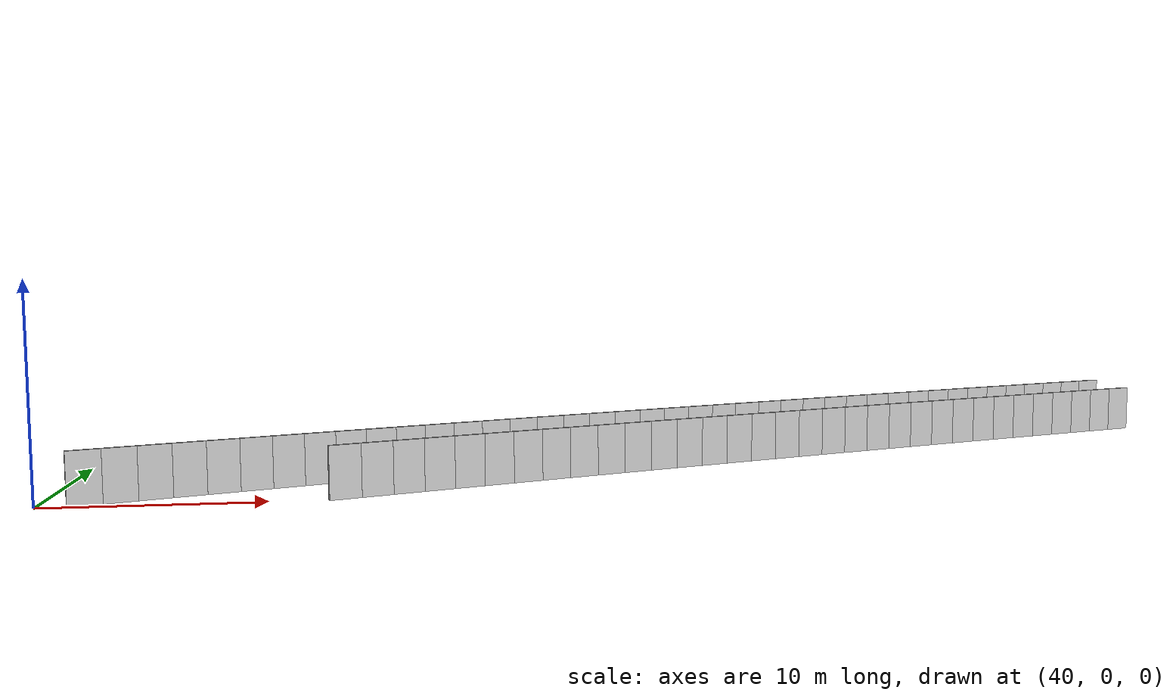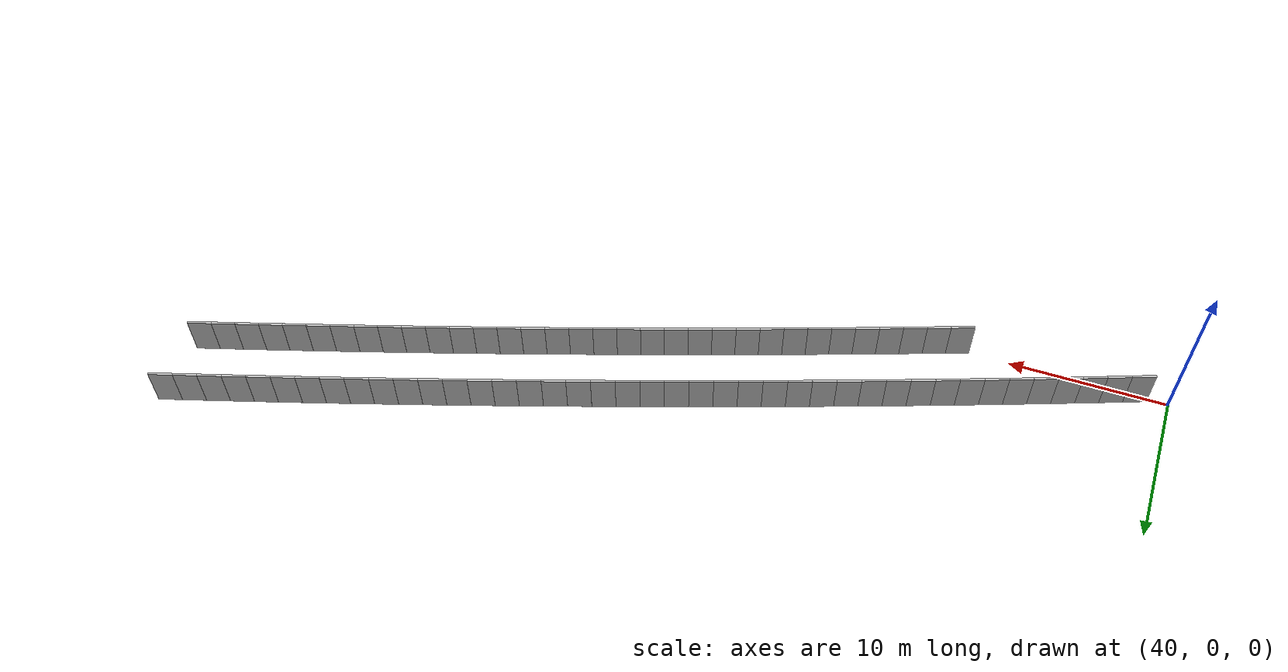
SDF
<?xml version="1.0" ?>
<sdf version="1.6">
  <model name="sps_0823">
    <pose frame="">0 0 0 0 -0 0</pose>
    <static>1</static>
    <self_collide>0</self_collide>
    <allow_auto_disable>0</allow_auto_disable>
    <link name="Wall3096">
      <kinematic>0</kinematic>
      <gravity>1</gravity>
      <self_collide>0</self_collide>
      <collision name="collision">
        <geometry>
          <box>
            <size>1.49633 0.15 2.5</size>
          </box>
        </geometry>
        <pose frame="">0 0 0 0 -0 0</pose>
      </collision>
      <visual name="visual">
        <geometry>
          <box>
            <size>1.49633 0.15 2.5</size>
          </box>
        </geometry>
        <pose frame="">0 0 0 0 -0 0</pose>
        <cast_shadows>1</cast_shadows>
        <transparency>0.0</transparency>
      </visual>
      <pose frame="">98.6327 15.6846 1.25 0 0 -2.83655</pose>
    </link>
    <link name="Wall3097">
      <kinematic>0</kinematic>
      <gravity>1</gravity>
      <self_collide>0</self_collide>
      <collision name="collision">
        <geometry>
          <box>
            <size>1.4966 0.15 2.5</size>
          </box>
        </geometry>
        <pose frame="">0 0 0 0 -0 0</pose>
      </collision>
      <visual name="visual">
        <geometry>
          <box>
            <size>1.4966 0.15 2.5</size>
          </box>
        </geometry>
        <pose frame="">0 0 0 0 -0 0</pose>
        <cast_shadows>1</cast_shadows>
        <transparency>0.0</transparency>
      </visual>
      <pose frame="">97.2056 15.234 1.25 0 0 -2.83489</pose>
    </link>
    <link name="Wall3098">
      <kinematic>0</kinematic>
      <gravity>1</gravity>
      <self_collide>0</self_collide>
      <collision name="collision">
        <geometry>
          <box>
            <size>1.4966 0.15 2.5</size>
          </box>
        </geometry>
        <pose frame="">0 0 0 0 -0 0</pose>
      </collision>
      <visual name="visual">
        <geometry>
          <box>
            <size>1.4966 0.15 2.5</size>
          </box>
        </geometry>
        <pose frame="">0 0 0 0 -0 0</pose>
        <cast_shadows>1</cast_shadows>
        <transparency>0.0</transparency>
      </visual>
      <pose frame="">95.7793 14.781 1.25 0 0 -2.83327</pose>
    </link>
    <link name="Wall3099">
      <kinematic>0</kinematic>
      <gravity>1</gravity>
      <self_collide>0</self_collide>
      <collision name="collision">
        <geometry>
          <box>
            <size>1.49642 0.15 2.5</size>
          </box>
        </geometry>
        <pose frame="">0 0 0 0 -0 0</pose>
      </collision>
      <visual name="visual">
        <geometry>
          <box>
            <size>1.49642 0.15 2.5</size>
          </box>
        </geometry>
        <pose frame="">0 0 0 0 -0 0</pose>
        <cast_shadows>1</cast_shadows>
        <transparency>0.0</transparency>
      </visual>
      <pose frame="">94.3537 14.3258 1.25 0 0 -2.83177</pose>
    </link>
    <link name="Wall3100">
      <kinematic>0</kinematic>
      <gravity>1</gravity>
      <self_collide>0</self_collide>
      <collision name="collision">
        <geometry>
          <box>
            <size>1.4966 0.15 2.5</size>
          </box>
        </geometry>
        <pose frame="">0 0 0 0 -0 0</pose>
      </collision>
      <visual name="visual">
        <geometry>
          <box>
            <size>1.4966 0.15 2.5</size>
          </box>
        </geometry>
        <pose frame="">0 0 0 0 -0 0</pose>
        <cast_shadows>1</cast_shadows>
        <transparency>0.0</transparency>
      </visual>
      <pose frame="">92.9288 13.8684 1.25 0 0 -2.83019</pose>
    </link>
    <link name="Wall3101">
      <kinematic>0</kinematic>
      <gravity>1</gravity>
      <self_collide>0</self_collide>
      <collision name="collision">
        <geometry>
          <box>
            <size>1.49654 0.15 2.5</size>
          </box>
        </geometry>
        <pose frame="">0 0 0 0 -0 0</pose>
      </collision>
      <visual name="visual">
        <geometry>
          <box>
            <size>1.49654 0.15 2.5</size>
          </box>
        </geometry>
        <pose frame="">0 0 0 0 -0 0</pose>
        <cast_shadows>1</cast_shadows>
        <transparency>0.0</transparency>
      </visual>
      <pose frame="">91.5046 13.4086 1.25 0 0 -2.82846</pose>
    </link>
    <link name="Wall3102">
      <kinematic>0</kinematic>
      <gravity>1</gravity>
      <self_collide>0</self_collide>
      <collision name="collision">
        <geometry>
          <box>
            <size>1.49647 0.15 2.5</size>
          </box>
        </geometry>
        <pose frame="">0 0 0 0 -0 0</pose>
      </collision>
      <visual name="visual">
        <geometry>
          <box>
            <size>1.49647 0.15 2.5</size>
          </box>
        </geometry>
        <pose frame="">0 0 0 0 -0 0</pose>
        <cast_shadows>1</cast_shadows>
        <transparency>0.0</transparency>
      </visual>
      <pose frame="">90.0812 12.9466 1.25 0 0 -2.82703</pose>
    </link>
    <link name="Wall3103">
      <kinematic>0</kinematic>
      <gravity>1</gravity>
      <self_collide>0</self_collide>
      <collision name="collision">
        <geometry>
          <box>
            <size>1.49639 0.15 2.5</size>
          </box>
        </geometry>
        <pose frame="">0 0 0 0 -0 0</pose>
      </collision>
      <visual name="visual">
        <geometry>
          <box>
            <size>1.49639 0.15 2.5</size>
          </box>
        </geometry>
        <pose frame="">0 0 0 0 -0 0</pose>
        <cast_shadows>1</cast_shadows>
        <transparency>0.0</transparency>
      </visual>
      <pose frame="">88.6586 12.4824 1.25 0 0 -2.82534</pose>
    </link>
    <link name="Wall3104">
      <kinematic>0</kinematic>
      <gravity>1</gravity>
      <self_collide>0</self_collide>
      <collision name="collision">
        <geometry>
          <box>
            <size>1.49663 0.15 2.5</size>
          </box>
        </geometry>
        <pose frame="">0 0 0 0 -0 0</pose>
      </collision>
      <visual name="visual">
        <geometry>
          <box>
            <size>1.49663 0.15 2.5</size>
          </box>
        </geometry>
        <pose frame="">0 0 0 0 -0 0</pose>
        <cast_shadows>1</cast_shadows>
        <transparency>0.0</transparency>
      </visual>
      <pose frame="">87.2367 12.0158 1.25 0 0 -2.82367</pose>
    </link>
    <link name="Wall3105">
      <kinematic>0</kinematic>
      <gravity>1</gravity>
      <self_collide>0</self_collide>
      <collision name="collision">
        <geometry>
          <box>
            <size>1.49643 0.15 2.5</size>
          </box>
        </geometry>
        <pose frame="">0 0 0 0 -0 0</pose>
      </collision>
      <visual name="visual">
        <geometry>
          <box>
            <size>1.49643 0.15 2.5</size>
          </box>
        </geometry>
        <pose frame="">0 0 0 0 -0 0</pose>
        <cast_shadows>1</cast_shadows>
        <transparency>0.0</transparency>
      </visual>
      <pose frame="">85.8155 11.547 1.25 0 0 -2.82225</pose>
    </link>
    <link name="Wall3106">
      <kinematic>0</kinematic>
      <gravity>1</gravity>
      <self_collide>0</self_collide>
      <collision name="collision">
        <geometry>
          <box>
            <size>1.49666 0.15 2.5</size>
          </box>
        </geometry>
        <pose frame="">0 0 0 0 -0 0</pose>
      </collision>
      <visual name="visual">
        <geometry>
          <box>
            <size>1.49666 0.15 2.5</size>
          </box>
        </geometry>
        <pose frame="">0 0 0 0 -0 0</pose>
        <cast_shadows>1</cast_shadows>
        <transparency>0.0</transparency>
      </visual>
      <pose frame="">84.395 11.076 1.25 0 0 -2.82063</pose>
    </link>
    <link name="Wall3107">
      <kinematic>0</kinematic>
      <gravity>1</gravity>
      <self_collide>0</self_collide>
      <collision name="collision">
        <geometry>
          <box>
            <size>1.49633 0.15 2.5</size>
          </box>
        </geometry>
        <pose frame="">0 0 0 0 -0 0</pose>
      </collision>
      <visual name="visual">
        <geometry>
          <box>
            <size>1.49633 0.15 2.5</size>
          </box>
        </geometry>
        <pose frame="">0 0 0 0 -0 0</pose>
        <cast_shadows>1</cast_shadows>
        <transparency>0.0</transparency>
      </visual>
      <pose frame="">82.9752 10.6028 1.25 0 0 -2.81909</pose>
    </link>
    <link name="Wall3108">
      <kinematic>0</kinematic>
      <gravity>1</gravity>
      <self_collide>0</self_collide>
      <collision name="collision">
        <geometry>
          <box>
            <size>1.49649 0.15 2.5</size>
          </box>
        </geometry>
        <pose frame="">0 0 0 0 -0 0</pose>
      </collision>
      <visual name="visual">
        <geometry>
          <box>
            <size>1.49649 0.15 2.5</size>
          </box>
        </geometry>
        <pose frame="">0 0 0 0 -0 0</pose>
        <cast_shadows>1</cast_shadows>
        <transparency>0.0</transparency>
      </visual>
      <pose frame="">81.5564 10.1274 1.25 0 0 -2.81749</pose>
    </link>
    <link name="Wall3109">
      <kinematic>0</kinematic>
      <gravity>1</gravity>
      <self_collide>0</self_collide>
      <collision name="collision">
        <geometry>
          <box>
            <size>1.4964 0.15 2.5</size>
          </box>
        </geometry>
        <pose frame="">0 0 0 0 -0 0</pose>
      </collision>
      <visual name="visual">
        <geometry>
          <box>
            <size>1.4964 0.15 2.5</size>
          </box>
        </geometry>
        <pose frame="">0 0 0 0 -0 0</pose>
        <cast_shadows>1</cast_shadows>
        <transparency>0.0</transparency>
      </visual>
      <pose frame="">80.1382 9.64979 1.25 0 0 -2.81601</pose>
    </link>
    <link name="Wall3110">
      <kinematic>0</kinematic>
      <gravity>1</gravity>
      <self_collide>0</self_collide>
      <collision name="collision">
        <geometry>
          <box>
            <size>1.49645 0.15 2.5</size>
          </box>
        </geometry>
        <pose frame="">0 0 0 0 -0 0</pose>
      </collision>
      <visual name="visual">
        <geometry>
          <box>
            <size>1.49645 0.15 2.5</size>
          </box>
        </geometry>
        <pose frame="">0 0 0 0 -0 0</pose>
        <cast_shadows>1</cast_shadows>
        <transparency>0.0</transparency>
      </visual>
      <pose frame="">78.7208 9.17 1.25 0 0 -2.81439</pose>
    </link>
    <link name="Wall3111">
      <kinematic>0</kinematic>
      <gravity>1</gravity>
      <self_collide>0</self_collide>
      <collision name="collision">
        <geometry>
          <box>
            <size>1.49643 0.15 2.5</size>
          </box>
        </geometry>
        <pose frame="">0 0 0 0 -0 0</pose>
      </collision>
      <visual name="visual">
        <geometry>
          <box>
            <size>1.49643 0.15 2.5</size>
          </box>
        </geometry>
        <pose frame="">0 0 0 0 -0 0</pose>
        <cast_shadows>1</cast_shadows>
        <transparency>0.0</transparency>
      </visual>
      <pose frame="">77.3041 8.68782 1.25 0 0 -2.81266</pose>
    </link>
    <link name="Wall3112">
      <kinematic>0</kinematic>
      <gravity>1</gravity>
      <self_collide>0</self_collide>
      <collision name="collision">
        <geometry>
          <box>
            <size>1.49664 0.15 2.5</size>
          </box>
        </geometry>
        <pose frame="">0 0 0 0 -0 0</pose>
      </collision>
      <visual name="visual">
        <geometry>
          <box>
            <size>1.49664 0.15 2.5</size>
          </box>
        </geometry>
        <pose frame="">0 0 0 0 -0 0</pose>
        <cast_shadows>1</cast_shadows>
        <transparency>0.0</transparency>
      </visual>
      <pose frame="">75.8882 8.2032 1.25 0 0 -2.81098</pose>
    </link>
    <link name="Wall3113">
      <kinematic>0</kinematic>
      <gravity>1</gravity>
      <self_collide>0</self_collide>
      <collision name="collision">
        <geometry>
          <box>
            <size>1.49652 0.15 2.5</size>
          </box>
        </geometry>
        <pose frame="">0 0 0 0 -0 0</pose>
      </collision>
      <visual name="visual">
        <geometry>
          <box>
            <size>1.49652 0.15 2.5</size>
          </box>
        </geometry>
        <pose frame="">0 0 0 0 -0 0</pose>
        <cast_shadows>1</cast_shadows>
        <transparency>0.0</transparency>
      </visual>
      <pose frame="">74.473 7.71638 1.25 0 0 -2.80958</pose>
    </link>
    <link name="Wall3114">
      <kinematic>0</kinematic>
      <gravity>1</gravity>
      <self_collide>0</self_collide>
      <collision name="collision">
        <geometry>
          <box>
            <size>1.49655 0.15 2.5</size>
          </box>
        </geometry>
        <pose frame="">0 0 0 0 -0 0</pose>
      </collision>
      <visual name="visual">
        <geometry>
          <box>
            <size>1.49655 0.15 2.5</size>
          </box>
        </geometry>
        <pose frame="">0 0 0 0 -0 0</pose>
        <cast_shadows>1</cast_shadows>
        <transparency>0.0</transparency>
      </visual>
      <pose frame="">73.0586 7.2274 1.25 0 0 -2.8079</pose>
    </link>
    <link name="Wall3115">
      <kinematic>0</kinematic>
      <gravity>1</gravity>
      <self_collide>0</self_collide>
      <collision name="collision">
        <geometry>
          <box>
            <size>1.49648 0.15 2.5</size>
          </box>
        </geometry>
        <pose frame="">0 0 0 0 -0 0</pose>
      </collision>
      <visual name="visual">
        <geometry>
          <box>
            <size>1.49648 0.15 2.5</size>
          </box>
        </geometry>
        <pose frame="">0 0 0 0 -0 0</pose>
        <cast_shadows>1</cast_shadows>
        <transparency>0.0</transparency>
      </visual>
      <pose frame="">71.645 6.73619 1.25 0 0 -2.80642</pose>
    </link>
    <link name="Wall3116">
      <kinematic>0</kinematic>
      <gravity>1</gravity>
      <self_collide>0</self_collide>
      <collision name="collision">
        <geometry>
          <box>
            <size>1.49644 0.15 2.5</size>
          </box>
        </geometry>
        <pose frame="">0 0 0 0 -0 0</pose>
      </collision>
      <visual name="visual">
        <geometry>
          <box>
            <size>1.49644 0.15 2.5</size>
          </box>
        </geometry>
        <pose frame="">0 0 0 0 -0 0</pose>
        <cast_shadows>1</cast_shadows>
        <transparency>0.0</transparency>
      </visual>
      <pose frame="">70.2323 6.24278 1.25 0 0 -2.80476</pose>
    </link>
    <link name="Wall3117">
      <kinematic>0</kinematic>
      <gravity>1</gravity>
      <self_collide>0</self_collide>
      <collision name="collision">
        <geometry>
          <box>
            <size>1.4965 0.15 2.5</size>
          </box>
        </geometry>
        <pose frame="">0 0 0 0 -0 0</pose>
      </collision>
      <visual name="visual">
        <geometry>
          <box>
            <size>1.4965 0.15 2.5</size>
          </box>
        </geometry>
        <pose frame="">0 0 0 0 -0 0</pose>
        <cast_shadows>1</cast_shadows>
        <transparency>0.0</transparency>
      </visual>
      <pose frame="">68.8203 5.74708 1.25 0 0 -2.80318</pose>
    </link>
    <link name="Wall3118">
      <kinematic>0</kinematic>
      <gravity>1</gravity>
      <self_collide>0</self_collide>
      <collision name="collision">
        <geometry>
          <box>
            <size>1.49646 0.15 2.5</size>
          </box>
        </geometry>
        <pose frame="">0 0 0 0 -0 0</pose>
      </collision>
      <visual name="visual">
        <geometry>
          <box>
            <size>1.49646 0.15 2.5</size>
          </box>
        </geometry>
        <pose frame="">0 0 0 0 -0 0</pose>
        <cast_shadows>1</cast_shadows>
        <transparency>0.0</transparency>
      </visual>
      <pose frame="">67.409 5.24919 1.25 0 0 -2.80166</pose>
    </link>
    <link name="Wall3119">
      <kinematic>0</kinematic>
      <gravity>1</gravity>
      <self_collide>0</self_collide>
      <collision name="collision">
        <geometry>
          <box>
            <size>1.49641 0.15 2.5</size>
          </box>
        </geometry>
        <pose frame="">0 0 0 0 -0 0</pose>
      </collision>
      <visual name="visual">
        <geometry>
          <box>
            <size>1.49641 0.15 2.5</size>
          </box>
        </geometry>
        <pose frame="">0 0 0 0 -0 0</pose>
        <cast_shadows>1</cast_shadows>
        <transparency>0.0</transparency>
      </visual>
      <pose frame="">65.9986 4.7491 1.25 0 0 -2.80004</pose>
    </link>
    <link name="Wall3120">
      <kinematic>0</kinematic>
      <gravity>1</gravity>
      <self_collide>0</self_collide>
      <collision name="collision">
        <geometry>
          <box>
            <size>1.49663 0.15 2.5</size>
          </box>
        </geometry>
        <pose frame="">0 0 0 0 -0 0</pose>
      </collision>
      <visual name="visual">
        <geometry>
          <box>
            <size>1.49663 0.15 2.5</size>
          </box>
        </geometry>
        <pose frame="">0 0 0 0 -0 0</pose>
        <cast_shadows>1</cast_shadows>
        <transparency>0.0</transparency>
      </visual>
      <pose frame="">64.589 4.24678 1.25 0 0 -2.79854</pose>
    </link>
    <link name="Wall3121">
      <kinematic>0</kinematic>
      <gravity>1</gravity>
      <self_collide>0</self_collide>
      <collision name="collision">
        <geometry>
          <box>
            <size>1.49646 0.15 2.5</size>
          </box>
        </geometry>
        <pose frame="">0 0 0 0 -0 0</pose>
      </collision>
      <visual name="visual">
        <geometry>
          <box>
            <size>1.49646 0.15 2.5</size>
          </box>
        </geometry>
        <pose frame="">0 0 0 0 -0 0</pose>
        <cast_shadows>1</cast_shadows>
        <transparency>0.0</transparency>
      </visual>
      <pose frame="">63.18 3.74217 1.25 0 0 -2.7968</pose>
    </link>
    <link name="Wall3122">
      <kinematic>0</kinematic>
      <gravity>1</gravity>
      <self_collide>0</self_collide>
      <collision name="collision">
        <geometry>
          <box>
            <size>1.49663 0.15 2.5</size>
          </box>
        </geometry>
        <pose frame="">0 0 0 0 -0 0</pose>
      </collision>
      <visual name="visual">
        <geometry>
          <box>
            <size>1.49663 0.15 2.5</size>
          </box>
        </geometry>
        <pose frame="">0 0 0 0 -0 0</pose>
        <cast_shadows>1</cast_shadows>
        <transparency>0.0</transparency>
      </visual>
      <pose frame="">61.772 3.23527 1.25 0 0 -2.79528</pose>
    </link>
    <link name="Wall3123">
      <kinematic>0</kinematic>
      <gravity>1</gravity>
      <self_collide>0</self_collide>
      <collision name="collision">
        <geometry>
          <box>
            <size>1.49646 0.15 2.5</size>
          </box>
        </geometry>
        <pose frame="">0 0 0 0 -0 0</pose>
      </collision>
      <visual name="visual">
        <geometry>
          <box>
            <size>1.49646 0.15 2.5</size>
          </box>
        </geometry>
        <pose frame="">0 0 0 0 -0 0</pose>
        <cast_shadows>1</cast_shadows>
        <transparency>0.0</transparency>
      </visual>
      <pose frame="">60.3647 2.72618 1.25 0 0 -2.79368</pose>
    </link>
    <link name="Wall3124">
      <kinematic>0</kinematic>
      <gravity>1</gravity>
      <self_collide>0</self_collide>
      <collision name="collision">
        <geometry>
          <box>
            <size>1.49646 0.15 2.5</size>
          </box>
        </geometry>
        <pose frame="">0 0 0 0 -0 0</pose>
      </collision>
      <visual name="visual">
        <geometry>
          <box>
            <size>1.49646 0.15 2.5</size>
          </box>
        </geometry>
        <pose frame="">0 0 0 0 -0 0</pose>
        <cast_shadows>1</cast_shadows>
        <transparency>0.0</transparency>
      </visual>
      <pose frame="">58.9583 2.21489 1.25 0 0 -2.79212</pose>
    </link>
    <link name="Wall3125">
      <kinematic>0</kinematic>
      <gravity>1</gravity>
      <self_collide>0</self_collide>
      <collision name="collision">
        <geometry>
          <box>
            <size>1.49647 0.15 2.5</size>
          </box>
        </geometry>
        <pose frame="">0 0 0 0 -0 0</pose>
      </collision>
      <visual name="visual">
        <geometry>
          <box>
            <size>1.49647 0.15 2.5</size>
          </box>
        </geometry>
        <pose frame="">0 0 0 0 -0 0</pose>
        <cast_shadows>1</cast_shadows>
        <transparency>0.0</transparency>
      </visual>
      <pose frame="">57.5527 1.7014 1.25 0 0 -2.79056</pose>
    </link>
    <link name="Wall3126">
      <kinematic>0</kinematic>
      <gravity>1</gravity>
      <self_collide>0</self_collide>
      <collision name="collision">
        <geometry>
          <box>
            <size>1.49648 0.15 2.5</size>
          </box>
        </geometry>
        <pose frame="">0 0 0 0 -0 0</pose>
      </collision>
      <visual name="visual">
        <geometry>
          <box>
            <size>1.49648 0.15 2.5</size>
          </box>
        </geometry>
        <pose frame="">0 0 0 0 -0 0</pose>
        <cast_shadows>1</cast_shadows>
        <transparency>0.0</transparency>
      </visual>
      <pose frame="">56.1478 1.18571 1.25 0 0 -2.789</pose>
    </link>
    <link name="Wall3127">
      <kinematic>0</kinematic>
      <gravity>1</gravity>
      <self_collide>0</self_collide>
      <collision name="collision">
        <geometry>
          <box>
            <size>1.49659 0.15 2.5</size>
          </box>
        </geometry>
        <pose frame="">0 0 0 0 -0 0</pose>
      </collision>
      <visual name="visual">
        <geometry>
          <box>
            <size>1.49659 0.15 2.5</size>
          </box>
        </geometry>
        <pose frame="">0 0 0 0 -0 0</pose>
        <cast_shadows>1</cast_shadows>
        <transparency>0.0</transparency>
      </visual>
      <pose frame="">54.7439 0.667617 1.25 0 0 -2.78716</pose>
    </link>
    <link name="Wall3128">
      <kinematic>0</kinematic>
      <gravity>1</gravity>
      <self_collide>0</self_collide>
      <collision name="collision">
        <geometry>
          <box>
            <size>1.49654 0.15 2.5</size>
          </box>
        </geometry>
        <pose frame="">0 0 0 0 -0 0</pose>
      </collision>
      <visual name="visual">
        <geometry>
          <box>
            <size>1.49654 0.15 2.5</size>
          </box>
        </geometry>
        <pose frame="">0 0 0 0 -0 0</pose>
        <cast_shadows>1</cast_shadows>
        <transparency>0.0</transparency>
      </visual>
      <pose frame="">53.3407 0.147292 1.25 0 0 -2.78584</pose>
    </link>
    <link name="Wall5706">
      <kinematic>0</kinematic>
      <gravity>1</gravity>
      <self_collide>0</self_collide>
      <collision name="collision">
        <geometry>
          <box>
            <size>1.50308 0.15 2.5</size>
          </box>
        </geometry>
        <pose frame="">0 0 0 0 -0 0</pose>
      </collision>
      <visual name="visual">
        <geometry>
          <box>
            <size>1.50308 0.15 2.5</size>
          </box>
        </geometry>
        <pose frame="">0 0 0 0 -0 0</pose>
        <cast_shadows>1</cast_shadows>
        <transparency>0.0</transparency>
      </visual>
      <pose frame="">98.8163 20.0813 1.25 0 0 -2.83809</pose>
    </link>
    <link name="Wall5707">
      <kinematic>0</kinematic>
      <gravity>1</gravity>
      <self_collide>0</self_collide>
      <collision name="collision">
        <geometry>
          <box>
            <size>1.50327 0.15 2.5</size>
          </box>
        </geometry>
        <pose frame="">0 0 0 0 -0 0</pose>
      </collision>
      <visual name="visual">
        <geometry>
          <box>
            <size>1.50327 0.15 2.5</size>
          </box>
        </geometry>
        <pose frame="">0 0 0 0 -0 0</pose>
        <cast_shadows>1</cast_shadows>
        <transparency>0.0</transparency>
      </visual>
      <pose frame="">97.3822 19.6309 1.25 0 0 -2.83647</pose>
    </link>
    <link name="Wall5708">
      <kinematic>0</kinematic>
      <gravity>1</gravity>
      <self_collide>0</self_collide>
      <collision name="collision">
        <geometry>
          <box>
            <size>1.50295 0.15 2.5</size>
          </box>
        </geometry>
        <pose frame="">0 0 0 0 -0 0</pose>
      </collision>
      <visual name="visual">
        <geometry>
          <box>
            <size>1.50295 0.15 2.5</size>
          </box>
        </geometry>
        <pose frame="">0 0 0 0 -0 0</pose>
        <cast_shadows>1</cast_shadows>
        <transparency>0.0</transparency>
      </visual>
      <pose frame="">95.9488 19.1782 1.25 0 0 -2.83487</pose>
    </link>
    <link name="Wall5709">
      <kinematic>0</kinematic>
      <gravity>1</gravity>
      <self_collide>0</self_collide>
      <collision name="collision">
        <geometry>
          <box>
            <size>1.50328 0.15 2.5</size>
          </box>
        </geometry>
        <pose frame="">0 0 0 0 -0 0</pose>
      </collision>
      <visual name="visual">
        <geometry>
          <box>
            <size>1.50328 0.15 2.5</size>
          </box>
        </geometry>
        <pose frame="">0 0 0 0 -0 0</pose>
        <cast_shadows>1</cast_shadows>
        <transparency>0.0</transparency>
      </visual>
      <pose frame="">94.5163 18.7232 1.25 0 0 -2.83323</pose>
    </link>
    <link name="Wall5710">
      <kinematic>0</kinematic>
      <gravity>1</gravity>
      <self_collide>0</self_collide>
      <collision name="collision">
        <geometry>
          <box>
            <size>1.50294 0.15 2.5</size>
          </box>
        </geometry>
        <pose frame="">0 0 0 0 -0 0</pose>
      </collision>
      <visual name="visual">
        <geometry>
          <box>
            <size>1.50294 0.15 2.5</size>
          </box>
        </geometry>
        <pose frame="">0 0 0 0 -0 0</pose>
        <cast_shadows>1</cast_shadows>
        <transparency>0.0</transparency>
      </visual>
      <pose frame="">93.0844 18.266 1.25 0 0 -2.8318</pose>
    </link>
    <link name="Wall5711">
      <kinematic>0</kinematic>
      <gravity>1</gravity>
      <self_collide>0</self_collide>
      <collision name="collision">
        <geometry>
          <box>
            <size>1.50322 0.15 2.5</size>
          </box>
        </geometry>
        <pose frame="">0 0 0 0 -0 0</pose>
      </collision>
      <visual name="visual">
        <geometry>
          <box>
            <size>1.50322 0.15 2.5</size>
          </box>
        </geometry>
        <pose frame="">0 0 0 0 -0 0</pose>
        <cast_shadows>1</cast_shadows>
        <transparency>0.0</transparency>
      </visual>
      <pose frame="">91.6533 17.8065 1.25 0 0 -2.83002</pose>
    </link>
    <link name="Wall5712">
      <kinematic>0</kinematic>
      <gravity>1</gravity>
      <self_collide>0</self_collide>
      <collision name="collision">
        <geometry>
          <box>
            <size>1.50301 0.15 2.5</size>
          </box>
        </geometry>
        <pose frame="">0 0 0 0 -0 0</pose>
      </collision>
      <visual name="visual">
        <geometry>
          <box>
            <size>1.50301 0.15 2.5</size>
          </box>
        </geometry>
        <pose frame="">0 0 0 0 -0 0</pose>
        <cast_shadows>1</cast_shadows>
        <transparency>0.0</transparency>
      </visual>
      <pose frame="">90.2228 17.3447 1.25 0 0 -2.82861</pose>
    </link>
    <link name="Wall5713">
      <kinematic>0</kinematic>
      <gravity>1</gravity>
      <self_collide>0</self_collide>
      <collision name="collision">
        <geometry>
          <box>
            <size>1.50295 0.15 2.5</size>
          </box>
        </geometry>
        <pose frame="">0 0 0 0 -0 0</pose>
      </collision>
      <visual name="visual">
        <geometry>
          <box>
            <size>1.50295 0.15 2.5</size>
          </box>
        </geometry>
        <pose frame="">0 0 0 0 -0 0</pose>
        <cast_shadows>1</cast_shadows>
        <transparency>0.0</transparency>
      </visual>
      <pose frame="">88.7932 16.8808 1.25 0 0 -2.82702</pose>
    </link>
    <link name="Wall5714">
      <kinematic>0</kinematic>
      <gravity>1</gravity>
      <self_collide>0</self_collide>
      <collision name="collision">
        <geometry>
          <box>
            <size>1.50317 0.15 2.5</size>
          </box>
        </geometry>
        <pose frame="">0 0 0 0 -0 0</pose>
      </collision>
      <visual name="visual">
        <geometry>
          <box>
            <size>1.50317 0.15 2.5</size>
          </box>
        </geometry>
        <pose frame="">0 0 0 0 -0 0</pose>
        <cast_shadows>1</cast_shadows>
        <transparency>0.0</transparency>
      </visual>
      <pose frame="">87.3643 16.4145 1.25 0 0 -2.82527</pose>
    </link>
    <link name="Wall5715">
      <kinematic>0</kinematic>
      <gravity>1</gravity>
      <self_collide>0</self_collide>
      <collision name="collision">
        <geometry>
          <box>
            <size>1.50304 0.15 2.5</size>
          </box>
        </geometry>
        <pose frame="">0 0 0 0 -0 0</pose>
      </collision>
      <visual name="visual">
        <geometry>
          <box>
            <size>1.50304 0.15 2.5</size>
          </box>
        </geometry>
        <pose frame="">0 0 0 0 -0 0</pose>
        <cast_shadows>1</cast_shadows>
        <transparency>0.0</transparency>
      </visual>
      <pose frame="">85.9361 15.9459 1.25 0 0 -2.82384</pose>
    </link>
    <link name="Wall5716">
      <kinematic>0</kinematic>
      <gravity>1</gravity>
      <self_collide>0</self_collide>
      <collision name="collision">
        <geometry>
          <box>
            <size>1.50321 0.15 2.5</size>
          </box>
        </geometry>
        <pose frame="">0 0 0 0 -0 0</pose>
      </collision>
      <visual name="visual">
        <geometry>
          <box>
            <size>1.50321 0.15 2.5</size>
          </box>
        </geometry>
        <pose frame="">0 0 0 0 -0 0</pose>
        <cast_shadows>1</cast_shadows>
        <transparency>0.0</transparency>
      </visual>
      <pose frame="">84.5087 15.4751 1.25 0 0 -2.8222</pose>
    </link>
    <link name="Wall5717">
      <kinematic>0</kinematic>
      <gravity>1</gravity>
      <self_collide>0</self_collide>
      <collision name="collision">
        <geometry>
          <box>
            <size>1.50297 0.15 2.5</size>
          </box>
        </geometry>
        <pose frame="">0 0 0 0 -0 0</pose>
      </collision>
      <visual name="visual">
        <geometry>
          <box>
            <size>1.50297 0.15 2.5</size>
          </box>
        </geometry>
        <pose frame="">0 0 0 0 -0 0</pose>
        <cast_shadows>1</cast_shadows>
        <transparency>0.0</transparency>
      </visual>
      <pose frame="">83.082 15.002 1.25 0 0 -2.82061</pose>
    </link>
    <link name="Wall5718">
      <kinematic>0</kinematic>
      <gravity>1</gravity>
      <self_collide>0</self_collide>
      <collision name="collision">
        <geometry>
          <box>
            <size>1.50311 0.15 2.5</size>
          </box>
        </geometry>
        <pose frame="">0 0 0 0 -0 0</pose>
      </collision>
      <visual name="visual">
        <geometry>
          <box>
            <size>1.50311 0.15 2.5</size>
          </box>
        </geometry>
        <pose frame="">0 0 0 0 -0 0</pose>
        <cast_shadows>1</cast_shadows>
        <transparency>0.0</transparency>
      </visual>
      <pose frame="">81.6561 14.5267 1.25 0 0 -2.81906</pose>
    </link>
    <link name="Wall5719">
      <kinematic>0</kinematic>
      <gravity>1</gravity>
      <self_collide>0</self_collide>
      <collision name="collision">
        <geometry>
          <box>
            <size>1.50297 0.15 2.5</size>
          </box>
        </geometry>
        <pose frame="">0 0 0 0 -0 0</pose>
      </collision>
      <visual name="visual">
        <geometry>
          <box>
            <size>1.50297 0.15 2.5</size>
          </box>
        </geometry>
        <pose frame="">0 0 0 0 -0 0</pose>
        <cast_shadows>1</cast_shadows>
        <transparency>0.0</transparency>
      </visual>
      <pose frame="">80.2309 14.0493 1.25 0 0 -2.81766</pose>
    </link>
    <link name="Wall5720">
      <kinematic>0</kinematic>
      <gravity>1</gravity>
      <self_collide>0</self_collide>
      <collision name="collision">
        <geometry>
          <box>
            <size>1.50304 0.15 2.5</size>
          </box>
        </geometry>
        <pose frame="">0 0 0 0 -0 0</pose>
      </collision>
      <visual name="visual">
        <geometry>
          <box>
            <size>1.50304 0.15 2.5</size>
          </box>
        </geometry>
        <pose frame="">0 0 0 0 -0 0</pose>
        <cast_shadows>1</cast_shadows>
        <transparency>0.0</transparency>
      </visual>
      <pose frame="">78.8064 13.5696 1.25 0 0 -2.81587</pose>
    </link>
    <link name="Wall5721">
      <kinematic>0</kinematic>
      <gravity>1</gravity>
      <self_collide>0</self_collide>
      <collision name="collision">
        <geometry>
          <box>
            <size>1.50324 0.15 2.5</size>
          </box>
        </geometry>
        <pose frame="">0 0 0 0 -0 0</pose>
      </collision>
      <visual name="visual">
        <geometry>
          <box>
            <size>1.50324 0.15 2.5</size>
          </box>
        </geometry>
        <pose frame="">0 0 0 0 -0 0</pose>
        <cast_shadows>1</cast_shadows>
        <transparency>0.0</transparency>
      </visual>
      <pose frame="">77.3827 13.0874 1.25 0 0 -2.81421</pose>
    </link>
    <link name="Wall5722">
      <kinematic>0</kinematic>
      <gravity>1</gravity>
      <self_collide>0</self_collide>
      <collision name="collision">
        <geometry>
          <box>
            <size>1.50291 0.15 2.5</size>
          </box>
        </geometry>
        <pose frame="">0 0 0 0 -0 0</pose>
      </collision>
      <visual name="visual">
        <geometry>
          <box>
            <size>1.50291 0.15 2.5</size>
          </box>
        </geometry>
        <pose frame="">0 0 0 0 -0 0</pose>
        <cast_shadows>1</cast_shadows>
        <transparency>0.0</transparency>
      </visual>
      <pose frame="">75.9599 12.603 1.25 0 0 -2.81271</pose>
    </link>
    <link name="Wall5723">
      <kinematic>0</kinematic>
      <gravity>1</gravity>
      <self_collide>0</self_collide>
      <collision name="collision">
        <geometry>
          <box>
            <size>1.50316 0.15 2.5</size>
          </box>
        </geometry>
        <pose frame="">0 0 0 0 -0 0</pose>
      </collision>
      <visual name="visual">
        <geometry>
          <box>
            <size>1.50316 0.15 2.5</size>
          </box>
        </geometry>
        <pose frame="">0 0 0 0 -0 0</pose>
        <cast_shadows>1</cast_shadows>
        <transparency>0.0</transparency>
      </visual>
      <pose frame="">74.5378 12.1164 1.25 0 0 -2.8111</pose>
    </link>
    <link name="Wall5724">
      <kinematic>0</kinematic>
      <gravity>1</gravity>
      <self_collide>0</self_collide>
      <collision name="collision">
        <geometry>
          <box>
            <size>1.50295 0.15 2.5</size>
          </box>
        </geometry>
        <pose frame="">0 0 0 0 -0 0</pose>
      </collision>
      <visual name="visual">
        <geometry>
          <box>
            <size>1.50295 0.15 2.5</size>
          </box>
        </geometry>
        <pose frame="">0 0 0 0 -0 0</pose>
        <cast_shadows>1</cast_shadows>
        <transparency>0.0</transparency>
      </visual>
      <pose frame="">73.1164 11.6275 1.25 0 0 -2.8095</pose>
    </link>
    <link name="Wall5725">
      <kinematic>0</kinematic>
      <gravity>1</gravity>
      <self_collide>0</self_collide>
      <collision name="collision">
        <geometry>
          <box>
            <size>1.50323 0.15 2.5</size>
          </box>
        </geometry>
        <pose frame="">0 0 0 0 -0 0</pose>
      </collision>
      <visual name="visual">
        <geometry>
          <box>
            <size>1.50323 0.15 2.5</size>
          </box>
        </geometry>
        <pose frame="">0 0 0 0 -0 0</pose>
        <cast_shadows>1</cast_shadows>
        <transparency>0.0</transparency>
      </visual>
      <pose frame="">71.6959 11.1364 1.25 0 0 -2.80798</pose>
    </link>
    <link name="Wall5726">
      <kinematic>0</kinematic>
      <gravity>1</gravity>
      <self_collide>0</self_collide>
      <collision name="collision">
        <geometry>
          <box>
            <size>1.50313 0.15 2.5</size>
          </box>
        </geometry>
        <pose frame="">0 0 0 0 -0 0</pose>
      </collision>
      <visual name="visual">
        <geometry>
          <box>
            <size>1.50313 0.15 2.5</size>
          </box>
        </geometry>
        <pose frame="">0 0 0 0 -0 0</pose>
        <cast_shadows>1</cast_shadows>
        <transparency>0.0</transparency>
      </visual>
      <pose frame="">70.276 10.643 1.25 0 0 -2.80632</pose>
    </link>
    <link name="Wall5727">
      <kinematic>0</kinematic>
      <gravity>1</gravity>
      <self_collide>0</self_collide>
      <collision name="collision">
        <geometry>
          <box>
            <size>1.50298 0.15 2.5</size>
          </box>
        </geometry>
        <pose frame="">0 0 0 0 -0 0</pose>
      </collision>
      <visual name="visual">
        <geometry>
          <box>
            <size>1.50298 0.15 2.5</size>
          </box>
        </geometry>
        <pose frame="">0 0 0 0 -0 0</pose>
        <cast_shadows>1</cast_shadows>
        <transparency>0.0</transparency>
      </visual>
      <pose frame="">68.857 10.1474 1.25 0 0 -2.80487</pose>
    </link>
    <link name="Wall5728">
      <kinematic>0</kinematic>
      <gravity>1</gravity>
      <self_collide>0</self_collide>
      <collision name="collision">
        <geometry>
          <box>
            <size>1.50304 0.15 2.5</size>
          </box>
        </geometry>
        <pose frame="">0 0 0 0 -0 0</pose>
      </collision>
      <visual name="visual">
        <geometry>
          <box>
            <size>1.50304 0.15 2.5</size>
          </box>
        </geometry>
        <pose frame="">0 0 0 0 -0 0</pose>
        <cast_shadows>1</cast_shadows>
        <transparency>0.0</transparency>
      </visual>
      <pose frame="">67.4388 9.64961 1.25 0 0 -2.80316</pose>
    </link>
    <link name="Wall5729">
      <kinematic>0</kinematic>
      <gravity>1</gravity>
      <self_collide>0</self_collide>
      <collision name="collision">
        <geometry>
          <box>
            <size>1.50326 0.15 2.5</size>
          </box>
        </geometry>
        <pose frame="">0 0 0 0 -0 0</pose>
      </collision>
      <visual name="visual">
        <geometry>
          <box>
            <size>1.50326 0.15 2.5</size>
          </box>
        </geometry>
        <pose frame="">0 0 0 0 -0 0</pose>
        <cast_shadows>1</cast_shadows>
        <transparency>0.0</transparency>
      </visual>
      <pose frame="">66.0213 9.14949 1.25 0 0 -2.80166</pose>
    </link>
    <link name="Wall5730">
      <kinematic>0</kinematic>
      <gravity>1</gravity>
      <self_collide>0</self_collide>
      <collision name="collision">
        <geometry>
          <box>
            <size>1.50307 0.15 2.5</size>
          </box>
        </geometry>
        <pose frame="">0 0 0 0 -0 0</pose>
      </collision>
      <visual name="visual">
        <geometry>
          <box>
            <size>1.50307 0.15 2.5</size>
          </box>
        </geometry>
        <pose frame="">0 0 0 0 -0 0</pose>
        <cast_shadows>1</cast_shadows>
        <transparency>0.0</transparency>
      </visual>
      <pose frame="">64.6045 8.64708 1.25 0 0 -2.79994</pose>
    </link>
    <link name="Wall5731">
      <kinematic>0</kinematic>
      <gravity>1</gravity>
      <self_collide>0</self_collide>
      <collision name="collision">
        <geometry>
          <box>
            <size>1.50306 0.15 2.5</size>
          </box>
        </geometry>
        <pose frame="">0 0 0 0 -0 0</pose>
      </collision>
      <visual name="visual">
        <geometry>
          <box>
            <size>1.50306 0.15 2.5</size>
          </box>
        </geometry>
        <pose frame="">0 0 0 0 -0 0</pose>
        <cast_shadows>1</cast_shadows>
        <transparency>0.0</transparency>
      </visual>
      <pose frame="">63.1887 8.14238 1.25 0 0 -2.79838</pose>
    </link>
    <link name="Wall5732">
      <kinematic>0</kinematic>
      <gravity>1</gravity>
      <self_collide>0</self_collide>
      <collision name="collision">
        <geometry>
          <box>
            <size>1.503 0.15 2.5</size>
          </box>
        </geometry>
        <pose frame="">0 0 0 0 -0 0</pose>
      </collision>
      <visual name="visual">
        <geometry>
          <box>
            <size>1.503 0.15 2.5</size>
          </box>
        </geometry>
        <pose frame="">0 0 0 0 -0 0</pose>
        <cast_shadows>1</cast_shadows>
        <transparency>0.0</transparency>
      </visual>
      <pose frame="">61.7737 7.63557 1.25 0 0 -2.79694</pose>
    </link>
    <link name="Wall5733">
      <kinematic>0</kinematic>
      <gravity>1</gravity>
      <self_collide>0</self_collide>
      <collision name="collision">
        <geometry>
          <box>
            <size>1.50323 0.15 2.5</size>
          </box>
        </geometry>
        <pose frame="">0 0 0 0 -0 0</pose>
      </collision>
      <visual name="visual">
        <geometry>
          <box>
            <size>1.50323 0.15 2.5</size>
          </box>
        </geometry>
        <pose frame="">0 0 0 0 -0 0</pose>
        <cast_shadows>1</cast_shadows>
        <transparency>0.0</transparency>
      </visual>
      <pose frame="">60.3594 7.12657 1.25 0 0 -2.79532</pose>
    </link>
    <link name="Wall5734">
      <kinematic>0</kinematic>
      <gravity>1</gravity>
      <self_collide>0</self_collide>
      <collision name="collision">
        <geometry>
          <box>
            <size>1.503 0.15 2.5</size>
          </box>
        </geometry>
        <pose frame="">0 0 0 0 -0 0</pose>
      </collision>
      <visual name="visual">
        <geometry>
          <box>
            <size>1.503 0.15 2.5</size>
          </box>
        </geometry>
        <pose frame="">0 0 0 0 -0 0</pose>
        <cast_shadows>1</cast_shadows>
        <transparency>0.0</transparency>
      </visual>
      <pose frame="">58.9459 6.61528 1.25 0 0 -2.79371</pose>
    </link>
    <link name="Wall5735">
      <kinematic>0</kinematic>
      <gravity>1</gravity>
      <self_collide>0</self_collide>
      <collision name="collision">
        <geometry>
          <box>
            <size>1.50306 0.15 2.5</size>
          </box>
        </geometry>
        <pose frame="">0 0 0 0 -0 0</pose>
      </collision>
      <visual name="visual">
        <geometry>
          <box>
            <size>1.50306 0.15 2.5</size>
          </box>
        </geometry>
        <pose frame="">0 0 0 0 -0 0</pose>
        <cast_shadows>1</cast_shadows>
        <transparency>0.0</transparency>
      </visual>
      <pose frame="">57.5333 6.10179 1.25 0 0 -2.79217</pose>
    </link>
    <link name="Wall5736">
      <kinematic>0</kinematic>
      <gravity>1</gravity>
      <self_collide>0</self_collide>
      <collision name="collision">
        <geometry>
          <box>
            <size>1.5031 0.15 2.5</size>
          </box>
        </geometry>
        <pose frame="">0 0 0 0 -0 0</pose>
      </collision>
      <visual name="visual">
        <geometry>
          <box>
            <size>1.5031 0.15 2.5</size>
          </box>
        </geometry>
        <pose frame="">0 0 0 0 -0 0</pose>
        <cast_shadows>1</cast_shadows>
        <transparency>0.0</transparency>
      </visual>
      <pose frame="">56.1215 5.58598 1.25 0 0 -2.79045</pose>
    </link>
    <link name="Wall5737">
      <kinematic>0</kinematic>
      <gravity>1</gravity>
      <self_collide>0</self_collide>
      <collision name="collision">
        <geometry>
          <box>
            <size>1.50303 0.15 2.5</size>
          </box>
        </geometry>
        <pose frame="">0 0 0 0 -0 0</pose>
      </collision>
      <visual name="visual">
        <geometry>
          <box>
            <size>1.50303 0.15 2.5</size>
          </box>
        </geometry>
        <pose frame="">0 0 0 0 -0 0</pose>
        <cast_shadows>1</cast_shadows>
        <transparency>0.0</transparency>
      </visual>
      <pose frame="">54.7106 5.06798 1.25 0 0 -2.78904</pose>
    </link>
    <link name="Wall5738">
      <kinematic>0</kinematic>
      <gravity>1</gravity>
      <self_collide>0</self_collide>
      <collision name="collision">
        <geometry>
          <box>
            <size>1.50313 0.15 2.5</size>
          </box>
        </geometry>
        <pose frame="">0 0 0 0 -0 0</pose>
      </collision>
      <visual name="visual">
        <geometry>
          <box>
            <size>1.50313 0.15 2.5</size>
          </box>
        </geometry>
        <pose frame="">0 0 0 0 -0 0</pose>
        <cast_shadows>1</cast_shadows>
        <transparency>0.0</transparency>
      </visual>
      <pose frame="">53.3004 4.54777 1.25 0 0 -2.78734</pose>
    </link>
    <link name="Wall5739">
      <kinematic>0</kinematic>
      <gravity>1</gravity>
      <self_collide>0</self_collide>
      <collision name="collision">
        <geometry>
          <box>
            <size>1.50313 0.15 2.5</size>
          </box>
        </geometry>
        <pose frame="">0 0 0 0 -0 0</pose>
      </collision>
      <visual name="visual">
        <geometry>
          <box>
            <size>1.50313 0.15 2.5</size>
          </box>
        </geometry>
        <pose frame="">0 0 0 0 -0 0</pose>
        <cast_shadows>1</cast_shadows>
        <transparency>0.0</transparency>
      </visual>
      <pose frame="">51.891 4.02528 1.25 0 0 -2.78582</pose>
    </link>
    <link name="Wall5740">
      <kinematic>0</kinematic>
      <gravity>1</gravity>
      <self_collide>0</self_collide>
      <collision name="collision">
        <geometry>
          <box>
            <size>1.503 0.15 2.5</size>
          </box>
        </geometry>
        <pose frame="">0 0 0 0 -0 0</pose>
      </collision>
      <visual name="visual">
        <geometry>
          <box>
            <size>1.503 0.15 2.5</size>
          </box>
        </geometry>
        <pose frame="">0 0 0 0 -0 0</pose>
        <cast_shadows>1</cast_shadows>
        <transparency>0.0</transparency>
      </visual>
      <pose frame="">50.4825 3.50059 1.25 0 0 -2.78419</pose>
    </link>
    <link name="Wall5741">
      <kinematic>0</kinematic>
      <gravity>1</gravity>
      <self_collide>0</self_collide>
      <collision name="collision">
        <geometry>
          <box>
            <size>1.50309 0.15 2.5</size>
          </box>
        </geometry>
        <pose frame="">0 0 0 0 -0 0</pose>
      </collision>
      <visual name="visual">
        <geometry>
          <box>
            <size>1.50309 0.15 2.5</size>
          </box>
        </geometry>
        <pose frame="">0 0 0 0 -0 0</pose>
        <cast_shadows>1</cast_shadows>
        <transparency>0.0</transparency>
      </visual>
      <pose frame="">49.0749 2.97359 1.25 0 0 -2.78252</pose>
    </link>
    <link name="Wall5742">
      <kinematic>0</kinematic>
      <gravity>1</gravity>
      <self_collide>0</self_collide>
      <collision name="collision">
        <geometry>
          <box>
            <size>1.50317 0.15 2.5</size>
          </box>
        </geometry>
        <pose frame="">0 0 0 0 -0 0</pose>
      </collision>
      <visual name="visual">
        <geometry>
          <box>
            <size>1.50317 0.15 2.5</size>
          </box>
        </geometry>
        <pose frame="">0 0 0 0 -0 0</pose>
        <cast_shadows>1</cast_shadows>
        <transparency>0.0</transparency>
      </visual>
      <pose frame="">47.668 2.44438 1.25 0 0 -2.78111</pose>
    </link>
    <link name="Wall5743">
      <kinematic>0</kinematic>
      <gravity>1</gravity>
      <self_collide>0</self_collide>
      <collision name="collision">
        <geometry>
          <box>
            <size>1.50316 0.15 2.5</size>
          </box>
        </geometry>
        <pose frame="">0 0 0 0 -0 0</pose>
      </collision>
      <visual name="visual">
        <geometry>
          <box>
            <size>1.50316 0.15 2.5</size>
          </box>
        </geometry>
        <pose frame="">0 0 0 0 -0 0</pose>
        <cast_shadows>1</cast_shadows>
        <transparency>0.0</transparency>
      </visual>
      <pose frame="">46.2619 1.91298 1.25 0 0 -2.77941</pose>
    </link>
    <link name="Wall5744">
      <kinematic>0</kinematic>
      <gravity>1</gravity>
      <self_collide>0</self_collide>
      <collision name="collision">
        <geometry>
          <box>
            <size>1.50297 0.15 2.5</size>
          </box>
        </geometry>
        <pose frame="">0 0 0 0 -0 0</pose>
      </collision>
      <visual name="visual">
        <geometry>
          <box>
            <size>1.50297 0.15 2.5</size>
          </box>
        </geometry>
        <pose frame="">0 0 0 0 -0 0</pose>
        <cast_shadows>1</cast_shadows>
        <transparency>0.0</transparency>
      </visual>
      <pose frame="">44.8567 1.37929 1.25 0 0 -2.7778</pose>
    </link>
    <link name="Wall5745">
      <kinematic>0</kinematic>
      <gravity>1</gravity>
      <self_collide>0</self_collide>
      <collision name="collision">
        <geometry>
          <box>
            <size>1.50316 0.15 2.5</size>
          </box>
        </geometry>
        <pose frame="">0 0 0 0 -0 0</pose>
      </collision>
      <visual name="visual">
        <geometry>
          <box>
            <size>1.50316 0.15 2.5</size>
          </box>
        </geometry>
        <pose frame="">0 0 0 0 -0 0</pose>
        <cast_shadows>1</cast_shadows>
        <transparency>0.0</transparency>
      </visual>
      <pose frame="">43.4525 0.843184 1.25 0 0 -2.77598</pose>
    </link>
    <link name="Wall5746">
      <kinematic>0</kinematic>
      <gravity>1</gravity>
      <self_collide>0</self_collide>
      <collision name="collision">
        <geometry>
          <box>
            <size>1.503 0.15 2.5</size>
          </box>
        </geometry>
        <pose frame="">0 0 0 0 -0 0</pose>
      </collision>
      <visual name="visual">
        <geometry>
          <box>
            <size>1.503 0.15 2.5</size>
          </box>
        </geometry>
        <pose frame="">0 0 0 0 -0 0</pose>
        <cast_shadows>1</cast_shadows>
        <transparency>0.0</transparency>
      </visual>
      <pose frame="">42.0492 0.304885 1.25 0 0 -2.77468</pose>
    </link>
  </model>
</sdf>
